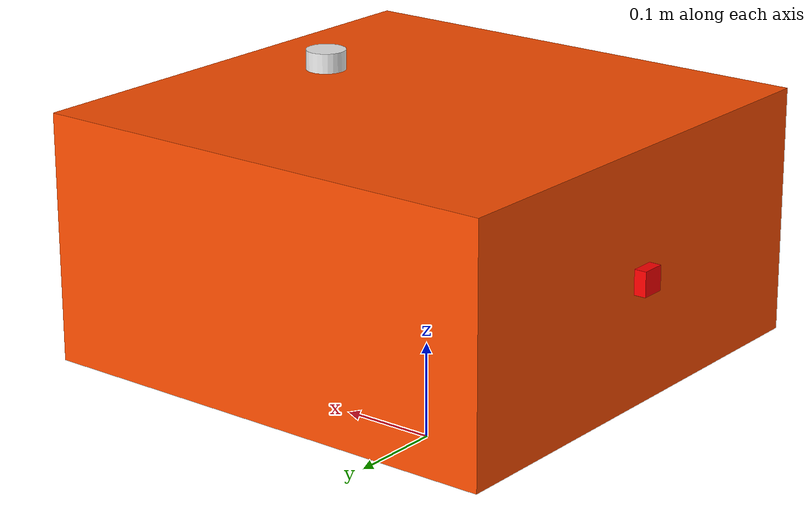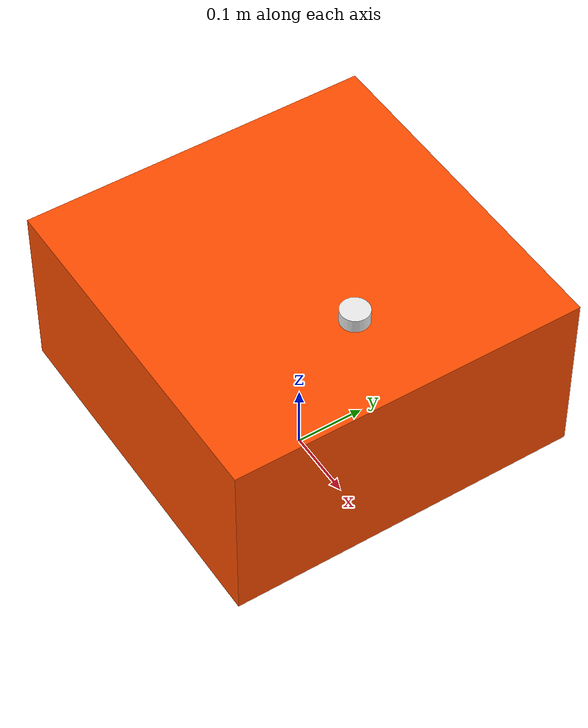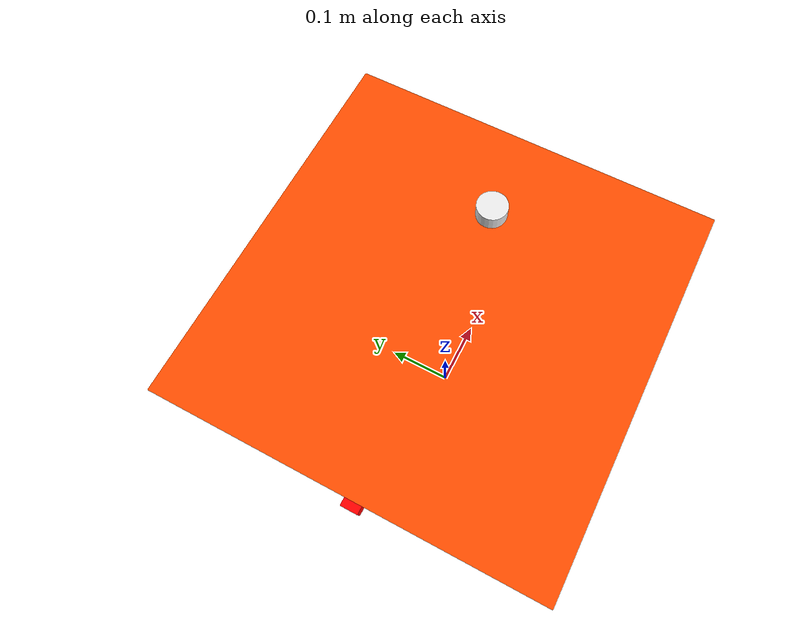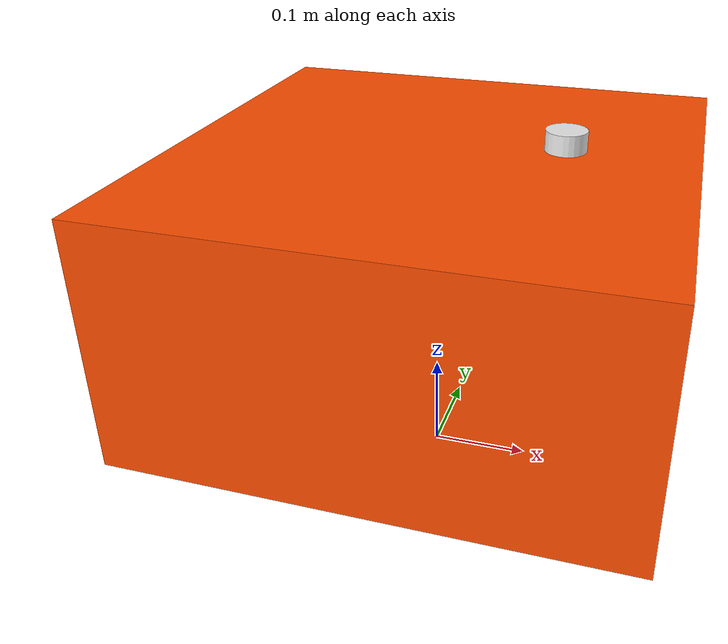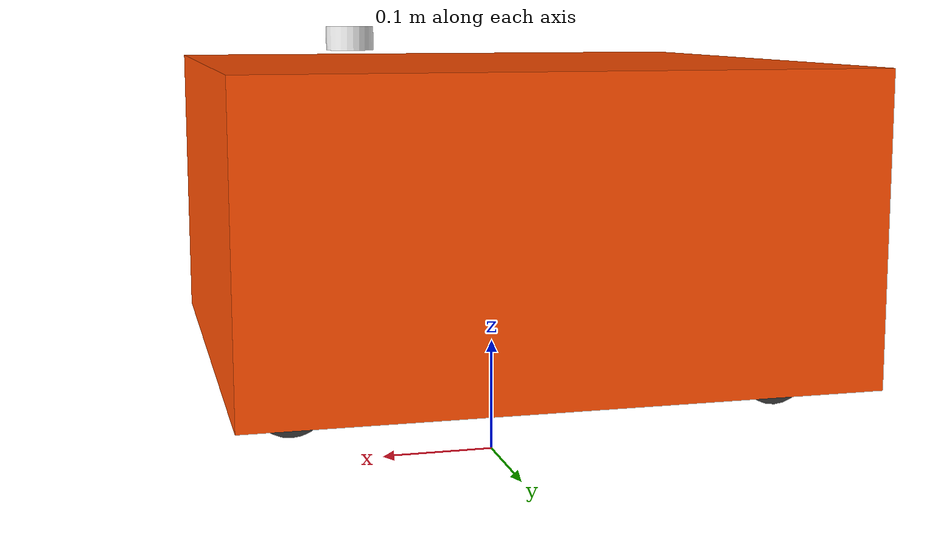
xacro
<?xml version="1.0"?>
<robot xmlns:xacro="http://www.ros.org/wiki/xacro" name="bcr_bot">

    <!--................................ XACRO CONSTANTS .............................. -->

    <!-- Robot dimensions - directly scaled down to 50% size -->
    <xacro:property name="chassis_mass" value="2.5"/>
    <xacro:property name="chassis_length" value="0.5"/>
    <xacro:property name="chassis_width" value="0.5"/>
    <xacro:property name="chassis_height" value="0.25"/>

    <xacro:property name="traction_wheel_mass" value="0.125"/>
    <xacro:property name="traction_wheel_base" value="0.44"/>
    <xacro:property name="traction_max_wheel_torque" value="5000"/>
    <xacro:property name="traction_wheel_friction" value="5.0"/>

    <xacro:property name="trolley_wheel_mass" value="0.0125"/>
    <xacro:property name="trolley_track_width" value="0.27"/>
    <xacro:property name="trolley_wheel_friction" value="0.0"/>
    <xacro:property name="trolley_wheel_radius" value="0.03"/>
    <!-- a small constant -->
    <xacro:property name="eps" value="0.001"/>

    <xacro:property name="traction_wheel_radius" value="0.03"/>
    <xacro:property name="traction_wheel_width" value="0.025"/>
    <xacro:property name="traction_track_width" value="0.3"/>

    <xacro:property name="two_d_lidar_update_rate" value="30"/>
    <xacro:property name="two_d_lidar_sample_size" value="361"/>
    <xacro:property name="two_d_lidar_min_angle" value="0"/>
    <xacro:property name="two_d_lidar_max_angle" value="360"/>
    <xacro:property name="two_d_lidar_min_range" value="0.275"/>
    <xacro:property name="two_d_lidar_max_range" value="8"/>

    <xacro:property name="camera_baseline" value="0.03"/>
    <xacro:property name="camera_height" value="0.05"/>
    <xacro:property name="camera_horizontal_fov" value="60"/>

    <xacro:arg name="robot_namespace" default=""/>
    <xacro:arg name="wheel_odom_topic" default="odom" />
    <xacro:arg name="camera_enabled" default="false" />
    <xacro:arg name="stereo_camera_enabled" default="false" />
    <xacro:arg name="two_d_lidar_enabled" default="false" />
    <xacro:arg name="publish_wheel_odom_tf" default="true" />
    <xacro:arg name="conveyor_enabled" default="false"/>
    <xacro:arg name="ground_truth_frame" default="map"/>
    <xacro:arg name="sim_gazebo" default="false" />
    <xacro:arg name="sim_ign" default="false" />
    <xacro:arg name="sim_gz" default="false" />
    <xacro:arg name="odometry_source" default="world" />

    <xacro:property name="odometry_source" value="$(arg odometry_source)"/>

    <!-- ............................... LOAD MACROS ................................. -->

    <xacro:include filename="$(find bcr_bot)/urdf/materials.xacro"/>
    <xacro:include filename="$(find bcr_bot)/urdf/macros.xacro"/>

    <xacro:if value="$(arg sim_gazebo)">
        <xacro:include filename="$(find bcr_bot)/urdf/gazebo.xacro"/>
    </xacro:if>

    <xacro:if value="$(arg sim_ign)">
        <xacro:include filename="$(find bcr_bot)/urdf/ign.xacro"/>
    </xacro:if>

    <xacro:if value="$(arg sim_gz)">
        <xacro:include filename="$(find bcr_bot)/urdf/gz.xacro"/>
    </xacro:if>

    <!-- ................................ BASE LINK .................................. -->
    <link name="base_footprint"/>

    <link name="base_link"/>

    <joint name="base_joint" type="fixed">
        <parent link="base_footprint"/>
        <child link="base_link"/>
        <origin xyz="0 0 0.10" rpy="0 0 0.0" />
    </joint>

    <link name="chassis_link">

        <collision>
            <origin xyz="0 0 0.125" rpy="0 0 0" />
            <geometry>
                <box size="0.5 0.5 0.25"/>
            </geometry>
        </collision>

        <visual>
            <origin xyz="0 0 0.125" rpy="0 0 0" />
            <geometry>
                <box size="0.5 0.5 0.25"/>
            </geometry>
            <material name="red_orange">
                <color rgba="1 0.302 0 1"/>
            </material>
        </visual>

        <inertial>
            <mass value="2.5" />
            <xacro:box_inertia m="2.5" x="0.5" y="0.5" z="0.25"/>
        </inertial>

    </link>

    <joint name="chassis_joint" type="fixed">
        <parent link="base_link"/>
        <child link="chassis_link"/>
        <origin xyz="0.0 0 0" rpy="0 0 0.0" />
    </joint>

    <!-- Front marker -->
    <link name="front_marker">
        <visual>
            <origin xyz="-0.25 0 0.125" rpy="0 0 0"/>
            <geometry><box size="0.025 0.025 0.025"/></geometry>
            <material name="red"><color rgba="1 0 0 1"/></material>
        </visual>
    </link>
    <joint name="front_marker_joint" type="fixed">
        <parent link="chassis_link"/>
        <child link="front_marker"/>
        <origin xyz="0 0 0" rpy="0 0 0"/>
    </joint>

    <!-- Dummy wheels for visual appearance (like sperro) -->
    <!-- Front Left Wheel -->
    <link name="fl_wheel">
        <visual>
            <origin xyz="0 0 0" rpy="1.5708 0 0"/>
            <geometry><cylinder radius="0.03" length="0.025"/></geometry>
            <material name="black"><color rgba="0.2 0.2 0.2 1"/></material>
        </visual>
        <!-- No collision for dummy wheels to prevent physics interference -->
        <inertial>
            <mass value="0.00125"/>
            <inertia ixx="0.0000003" ixy="0" ixz="0" iyy="0.0000003" iyz="0" izz="0.0000003"/>
        </inertial>
    </link>
    <joint name="fl_wheel_joint" type="fixed">
        <parent link="chassis_link"/>
        <child link="fl_wheel"/>
        <origin xyz="-0.2 0.15 0.0" rpy="0 0 0"/>
    </joint>

    <!-- Front Right Wheel -->
    <link name="fr_wheel">
        <visual>
            <origin xyz="0 0 0" rpy="1.5708 0 0"/>
            <geometry><cylinder radius="0.03" length="0.025"/></geometry>
            <material name="black"><color rgba="0.2 0.2 0.2 1"/></material>
        </visual>
        <!-- No collision for dummy wheels to prevent physics interference -->
        <inertial>
            <mass value="0.00125"/>
            <inertia ixx="0.0000003" ixy="0" ixz="0" iyy="0.0000003" iyz="0" izz="0.0000003"/>
        </inertial>
    </link>
    <joint name="fr_wheel_joint" type="fixed">
        <parent link="chassis_link"/>
        <child link="fr_wheel"/>
        <origin xyz="-0.2 -0.15 0.0" rpy="0 0 0"/>
    </joint>

    <!-- Rear Left Wheel -->
    <link name="rl_wheel">
        <visual>
            <origin xyz="0 0 0" rpy="1.5708 0 0"/>
            <geometry><cylinder radius="0.03" length="0.025"/></geometry>
            <material name="black"><color rgba="0.2 0.2 0.2 1"/></material>
        </visual>
        <!-- No collision for dummy wheels to prevent physics interference -->
        <inertial>
            <mass value="0.00125"/>
            <inertia ixx="0.0000003" ixy="0" ixz="0" iyy="0.0000003" iyz="0" izz="0.0000003"/>
        </inertial>
    </link>
    <joint name="rl_wheel_joint" type="fixed">
        <parent link="chassis_link"/>
        <child link="rl_wheel"/>
        <origin xyz="0.2 0.15 0.0" rpy="0 0 0"/>
    </joint>

    <!-- Rear Right Wheel -->
    <link name="rr_wheel">
        <visual>
            <origin xyz="0 0 0" rpy="1.5708 0 0"/>
            <geometry><cylinder radius="0.03" length="0.025"/></geometry>
            <material name="black"><color rgba="0.2 0.2 0.2 1"/></material>
        </visual>
        <!-- No collision for dummy wheels to prevent physics interference -->
        <inertial>
            <mass value="0.00125"/>
            <inertia ixx="0.0000003" ixy="0" ixz="0" iyy="0.0000003" iyz="0" izz="0.0000003"/>
        </inertial>
    </link>
    <joint name="rr_wheel_joint" type="fixed">
        <parent link="chassis_link"/>
        <child link="rr_wheel"/>
        <origin xyz="0.2 -0.15 0.0" rpy="0 0 0"/>
    </joint>

    <!-- ................................ WHEELS ..................................... -->

    <xacro:trolley_wheel cardinality="front" dexterity="left" origin_x="${chassis_length/2}" origin_y="${trolley_track_width/2}" origin_z="-${traction_wheel_radius}"/>
    <xacro:trolley_wheel cardinality="front" dexterity="right" origin_x="${chassis_length/2}" origin_y="-${trolley_track_width/2}" origin_z="-${traction_wheel_radius}"/>

    <xacro:trolley_wheel cardinality="back" dexterity="left" origin_x="-${chassis_length/2}" origin_y="${trolley_track_width/2}" origin_z="-${traction_wheel_radius}"/>
    <xacro:trolley_wheel cardinality="back" dexterity="right" origin_x="-${chassis_length/2}" origin_y="-${trolley_track_width/2}" origin_z="-${traction_wheel_radius}"/>

    <xacro:traction_wheel cardinality="middle" dexterity="left" origin_x="0" origin_y="${traction_track_width/2}" origin_z="-${traction_wheel_radius}"/>
    <xacro:traction_wheel cardinality="middle" dexterity="right" origin_x="0" origin_y="-${traction_track_width/2}" origin_z="-${traction_wheel_radius}"/>

    <!-- ............................. 2D LIDAR ........................................ -->

    <xacro:if value="$(arg two_d_lidar_enabled)">

        <link name="two_d_lidar">
            <visual>
                <origin xyz="0 0 0" rpy="0 0 0" />
                <geometry>
                <cylinder length="0.03" radius="0.0375"/>
                </geometry>
                <material name="white"/>
            </visual>
            <collision>
                <origin xyz="0 0 0" rpy="0 0 0" />
                <geometry>
                <cylinder length="0.03" radius="0.0375"/>
                </geometry>
            </collision>
            <inertial>
                <origin xyz="0 0 0" rpy="0 0 0" />
            <mass value="0.0125"/>
            <inertia ixx="0.0000003" ixy="0" ixz="0" iyy="0.0000003" iyz="0" izz="0.0000003"/>
            </inertial>
        </link>

        <joint name="two_d_lidar_joint" type="fixed">
            <parent link="base_link"/>
            <child link="two_d_lidar"/>
        <origin xyz="0.175 0 0.27" rpy="0 0 0" />
        </joint>

        <gazebo reference="two_d_lidar">
            <material>Gazebo/White</material>
        </gazebo>

    </xacro:if>

    <!-- ............................. IMU ........................................ -->

    <link name="imu_frame">
        <visual>
            <origin xyz="0 0 0" rpy="0 0 0" />
            <geometry>
                <cylinder length="0.02" radius="0.02"/>
            </geometry>
            <material name="white"/>
        </visual>
        <collision>
            <origin xyz="0 0 0" rpy="0 0 0" />
            <geometry>
                <cylinder length="0.02" radius="0.02"/>
            </geometry>
        </collision>
        <inertial>
            <origin xyz="0 0 0" rpy="0 0 0" />
            <mass value="0.00625"/>
            <inertia ixx="0.0000001" ixy="0" ixz="0" iyy="0.0000001" iyz="0" izz="0.0000001"/>
        </inertial>
    </link>

    <joint name="imu_joint" type="fixed">
        <parent link="base_link"/>
        <child link="imu_frame"/>
        <origin xyz="0.125 0 0.27" rpy="0 0 0"/>
    </joint>

    <!-- ............................. CAMERA ........................................ -->

    <xacro:if value="$(arg camera_enabled)">

        <!-- KINECT CAMERA -->

        <link name="kinect_camera">

            <collision>
                <origin xyz="0 0 0" rpy="0 0 0" />
                <geometry>
                    <box size="0.035 0.15 0.045"/>
                </geometry>
            </collision>

            <visual>
                <origin xyz="0 0 0" rpy="0 0 0" />
                <geometry>
                    <mesh filename="file://$(find bcr_bot)/meshes/kinect/d415.dae" scale="0.5 0.5 0.5"/>
                </geometry>
                <material name="black"/>
            </visual>

            <inertial>
                <mass value="0.00125"/>
                <xacro:box_inertia m="0.00125" x="0.035" y="0.15" z="0.045"/>
            </inertial>

        </link>

        <joint name="kinect_camera_joint" type="fixed">
            <origin rpy="0 0 0" xyz="${chassis_length/2} 0 ${chassis_height/7}"/>
            <parent link="base_link"/>
            <child link="kinect_camera"/>
        </joint>

        <link name="kinect_camera_optical"/>

        <joint name="kinect_camera_optical_joint" type="fixed">
            <origin xyz="0 0 0" rpy="${-pi/2} 0 ${-pi/2}"/>
            <parent link="kinect_camera"/>
            <child link="kinect_camera_optical"/>
        </joint>

    </xacro:if>

    <!-- .............................STEREO CAMERA ........................................ -->

    <xacro:if value="$(arg stereo_camera_enabled)">

        <!-- STEREO CAMERA -->

        <link name="stereo_camera">

            <collision>
                <origin xyz="0 0 0" rpy="0 0 0" />
                <geometry>
                    <box size="0.035 0.15 0.045"/>
                </geometry>
            </collision>

            <visual>
                <origin xyz="0 0 0" rpy="0 0 0" />
                <geometry>
                    <mesh filename="file://$(find bcr_bot)/meshes/kinect/d415.dae" scale="0.5 0.5 0.5"/>
                </geometry>
                <material name="black"/>
            </visual>

            <inertial>
                <mass value="0.00125"/>
                <xacro:box_inertia m="0.00125" x="0.035" y="0.15" z="0.045"/>
            </inertial>

        </link>

        <joint name="stereo_camera_joint" type="fixed">
            <origin rpy="0 0 0" xyz="${chassis_length/2} 0 ${chassis_height/7}"/>
            <parent link="base_link"/>
            <child link="stereo_camera"/>
        </joint>

        <link name="stereo_camera_optical"/>

        <joint name="stereo_camera_optical_joint" type="fixed">
            <origin xyz="0 0 0" rpy="${-pi/2} 0 ${-pi/2}"/>
            <parent link="stereo_camera"/>
            <child link="stereo_camera_optical"/>
        </joint>

    </xacro:if>

    <!-- ............................. ROOF ........................................ -->

    <link name="roof_link">

        <collision>
            <origin xyz="0 0 0" rpy="0 0 0" />
            <geometry>
                <box size="0.5 0.5 0.0075"/>
            </geometry>
        </collision>

        <inertial>
            <mass value="0.125"/>
            <xacro:box_inertia m="0.125" x="0.5" y="0.3" z="0.0075"/>
        </inertial>

    </link>

    <joint name="roof_joint" type="fixed">
        <parent link="chassis_link"/>
        <child link="roof_link"/>
        <origin xyz="0 0 0.135" rpy="0 0 0" />
    </joint>

    <!-- ............................. CONVEYOR ........................................ -->

    <xacro:if value="$(arg conveyor_enabled)">

        <link name="conveyor_belt">

            <collision>
                <origin xyz="0 0 0" rpy="0 0 0" />
                <geometry>
                    <box size="0.5 0.3 0.0075"/>
                </geometry>
            </collision>

            <visual>
                <origin xyz="0 0 0" rpy="0 0 0"/>
                <geometry>
                    <box size="0.5 0.3 0.0075"/>
                </geometry>
            </visual>

            <inertial>
                <mass value="0.125"/>
                <xacro:box_inertia m="0.125" x="0.5" y="0.3" z="0.0075"/>
            </inertial>

        </link>

        <joint name="conveyor_joint" type="fixed">
            <parent link="base_link"/>
            <child link="conveyor_belt"/>
            <origin xyz="0 0 0.26" rpy="0 0 0" />
        </joint>

    </xacro:if>

</robot>

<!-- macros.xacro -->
<robot xmlns:xacro="http://www.ros.org/wiki/xacro" name="bcr_bot">

    <!--................................ INERTIA MATRICES .............................. -->

    <xacro:macro name="cylinder_inertia" params="m r h">
        <inertia ixx="${m * (3 * r * r + h * h) / 12}" ixy="0" ixz="0" iyy="${m * (3 * r * r + h * h) / 12}" iyz="0" izz="${m * r * r / 2}" />
    </xacro:macro>

    <xacro:macro name="box_inertia" params="m x y z">
        <inertia ixx="${m * (y * y + z * z) / 12}" ixy="0" ixz="0" iyy="${m * (x * x + z * z) / 12}" iyz="0" izz="${m * (y * y + x * x) / 12}" />
    </xacro:macro>

    <xacro:macro name="sphere_inertia" params="m r">
        <inertia ixx="${2 * m * r * r / 5}" ixy="0" ixz="0" iyy="${2 * m * r * r / 5}" iyz="0" izz="${2 * m * r * r / 5}" />
    </xacro:macro>

    <!-- ............................... TROLLEY WHEEL DEFINITION .............................. -->

    <xacro:macro name="trolley_wheel" params="cardinality dexterity origin_x origin_y origin_z">
        <link name="${cardinality}_${dexterity}_wheel">
            <collision>
                <origin xyz="0 0 0" rpy="0 ${pi/2} ${pi/2}" />
                <geometry>
                    <sphere radius="${trolley_wheel_radius}"/>
                </geometry>
            </collision>

            <inertial>
                <origin xyz="0 0 0" rpy="0 0 0" />
                <mass value="${trolley_wheel_mass}"/>
                <xacro:sphere_inertia m="${trolley_wheel_mass}" r="${trolley_wheel_radius}"/>
            </inertial>

            <mu>0.0</mu>
        </link>

        <joint name="${cardinality}_${dexterity}_wheel_joint" type="fixed">
            <parent link="base_link"/>
            <child link="${cardinality}_${dexterity}_wheel"/>
            <origin xyz="${origin_x} ${origin_y} ${origin_z}" rpy="0 0 0" />
            <axis xyz="0 1 0" rpy="0 0 0" />
        </joint>

        <gazebo reference="${cardinality}_${dexterity}_wheel">
            <material>Gazebo/Black</material>
            <mu1>0.01</mu1>
            <mu2>0.01</mu2>
            <kp>1000000.0</kp>
            <kd>100.0</kd>
            <minDepth>0.001</minDepth>
            <maxContacts>1</maxContacts>
        </gazebo>
    </xacro:macro>

    <xacro:macro name="traction_wheel" params="cardinality dexterity origin_x origin_y origin_z">
        <link name="${cardinality}_${dexterity}_wheel">
            <collision>
                <origin xyz="0 0 0" rpy="0 ${pi/2} ${pi/2}" />
                <geometry>
                    <cylinder length="${traction_wheel_width}" radius="${traction_wheel_radius}"/>
                </geometry>
                <self_collide>false</self_collide>
            </collision>

            <inertial>
                <origin xyz="0 0 0" rpy="0 ${pi/2} ${pi/2}" />
                <mass value="${traction_wheel_mass}"/>
                <xacro:cylinder_inertia m="${traction_wheel_mass}" r="${traction_wheel_radius}" h="${traction_wheel_width}"/>
            </inertial>

            <mu>5.0</mu>
        </link>

        <joint name="${cardinality}_${dexterity}_wheel_joint" type="continuous">
            <parent link="base_link"/>
            <child link="${cardinality}_${dexterity}_wheel"/>
            <origin xyz="${origin_x} ${origin_y} ${origin_z}" rpy="0 0 0" />
            <axis xyz="0 1 0" rpy="0 0 0" />
            <limit lower="-1000" upper="1000" effort="1000" velocity="10"/>
            <dynamics damping="0.05" friction="0.05"/>
        </joint>

        <gazebo reference="${cardinality}_${dexterity}_wheel">
            <material>Gazebo/Black</material>
            <mu1>1.0</mu1>
            <mu2>1.0</mu2>
            <kp>1000000.0</kp>
            <kd>100.0</kd>
            <minDepth>0.001</minDepth>
            <maxContacts>1</maxContacts>
        </gazebo>
    </xacro:macro>

</robot>
